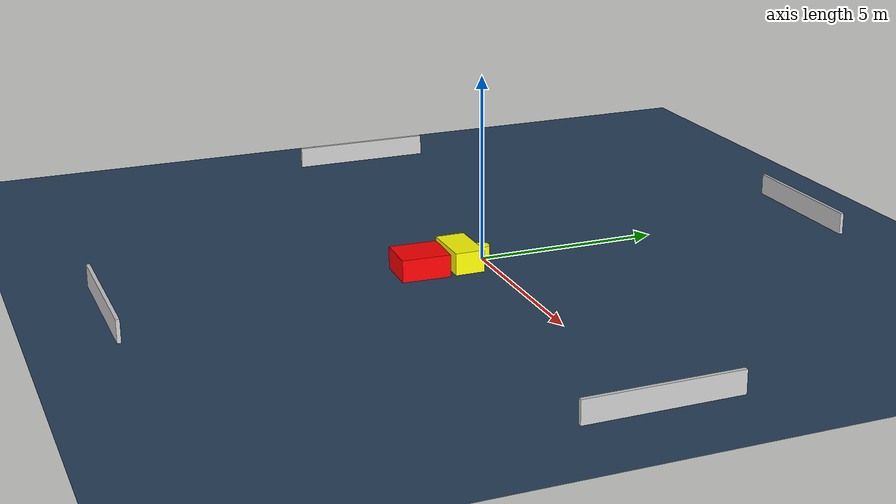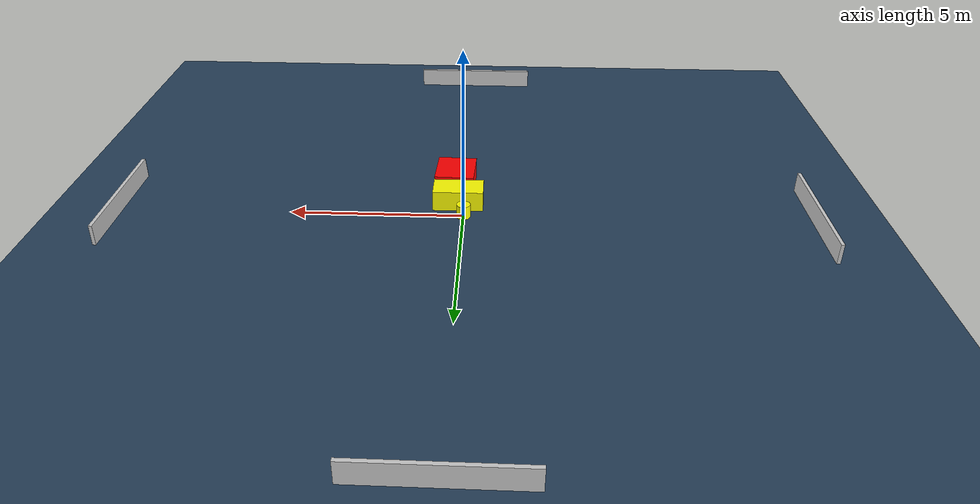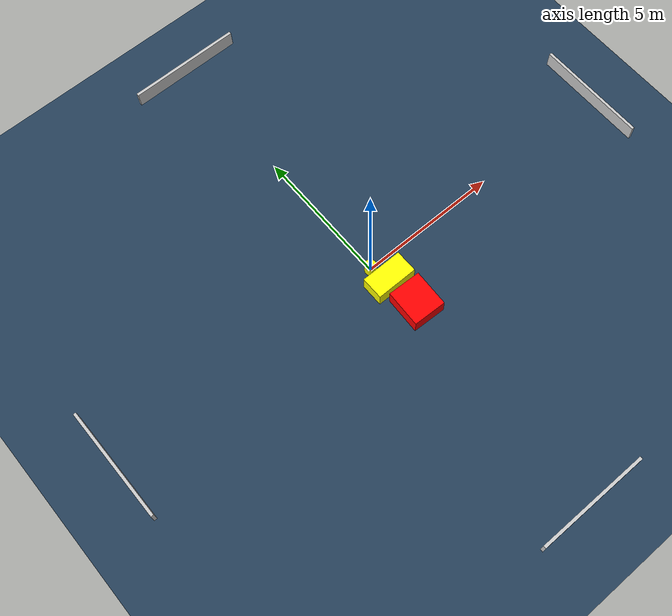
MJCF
<?xml version="1.0" ?>
<mujoco model="generated_environment">
  <option timestep="0.01" integrator="RK4" cone="elliptic"/>
  <default>
    <geom density="1"/>
  </default>
  <asset>
    <texture builtin="gradient" height="3072" name="skybox" rgb1="0.3 0.5 0.7" rgb2="0 0 0" type="skybox" width="512"/>
    <texture builtin="checker" height="300" name="groundplane" rgb1="0.2 0.3 0.4" rgb2="0.1 0.2 0.3" type="2d" width="300"/>
    <material name="groundplane" reflectance="0.2" texrepeat="5 5" texture="groundplane"/>
  </asset>
  <worldbody>
    <light dir="0 0 -1" directional="true" pos="0 0 1.5"/>
    <geom condim="3" friction="0.5 0.005 0.001" material="groundplane" name="floor" pos="0 0 0" size="0 0 0.05" type="plane"/>
    <body name="walls">
      <geom name="wall_1" condim="4" pos="-10.0 0.0 0.3" rgba="0.800000011920929 0.800000011920929 0.800000011920929 1.0" size="0.05 2.0 0.3" type="box"/>
      <geom name="wall_2" condim="4" pos="10.0 0.0 0.3" rgba="0.800000011920929 0.800000011920929 0.800000011920929 1.0" size="0.05 2.0 0.3" type="box"/>
      <geom name="wall_3" condim="4" pos="0.0 -10.0 0.3" rgba="0.800000011920929 0.800000011920929 0.800000011920929 1.0" size="2.0 0.05 0.3" type="box"/>
      <geom name="wall_4" condim="4" pos="0.0 10.0 0.3" rgba="0.800000011920929 0.800000011920929 0.800000011920929 1.0" size="2.0 0.05 0.3" type="box"/>
    </body>
    <body name="robot">
      <joint name="joint_x" type="slide" pos="0 0 0" axis="1 0 0"/>
      <joint name="joint_y" type="slide" pos="0 0 0" axis="0 1 0"/>
      <geom name="robot" type="cylinder" pos="0.0 0.0 0.2" size="0.2 0.2 0.0" mass="5.0" friction="1.0 0.005 0.0001" condim="4" rgba="1.0 1.0 0.0 1.0"/>
    </body>
    <body name="obstacle_1_movable">
      <geom name="obstacle_1_movable" condim="4" pos="0.1794894108966822 -0.7081070067853632 0.3" euler="0 0 0.03155168463589764" friction="0.0 0.005 0.001" rgba="1.0 1.0 0.0 1.0" size="0.7307855088363753 0.39899019859001716 0.3" type="box" mass="0.1"/>
      <joint type="free"/>
    </body>
    <body name="obstacle_2_static">
      <geom name="obstacle_2_static" condim="4" pos="0.3136406855262483 -1.8893311160503619 0.3" euler="0 0 357.7269342334115" friction="0.0 0.005 0.001" rgba="1.0 0.0 0.0 1.0" size="0.5820569647496476 0.6529994367560168 0.3" type="box"/>
    </body>
  </worldbody>
  <actuator>
    <motor name="actuator_x" joint="joint_x" gear="1" ctrlrange="-1 1"/>
    <motor name="actuator_y" joint="joint_y" gear="1" ctrlrange="-1 1"/>
  </actuator>
</mujoco>
